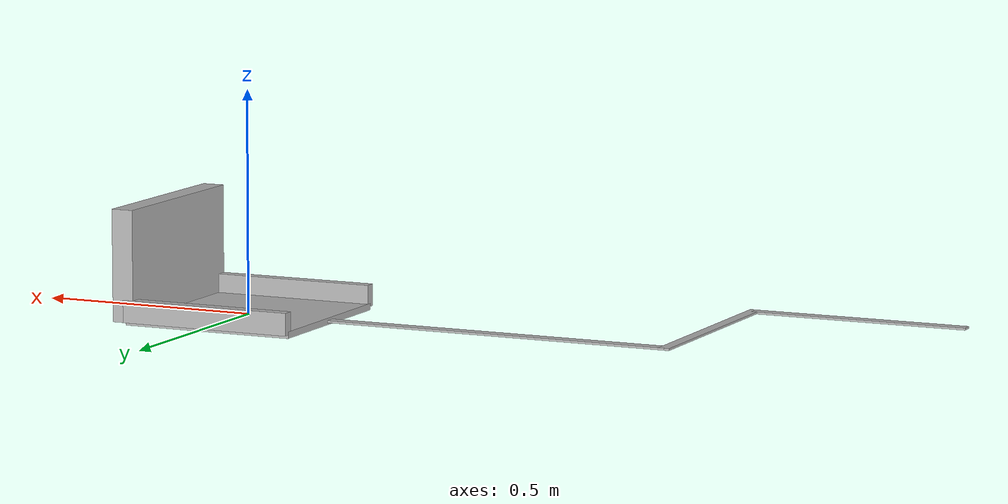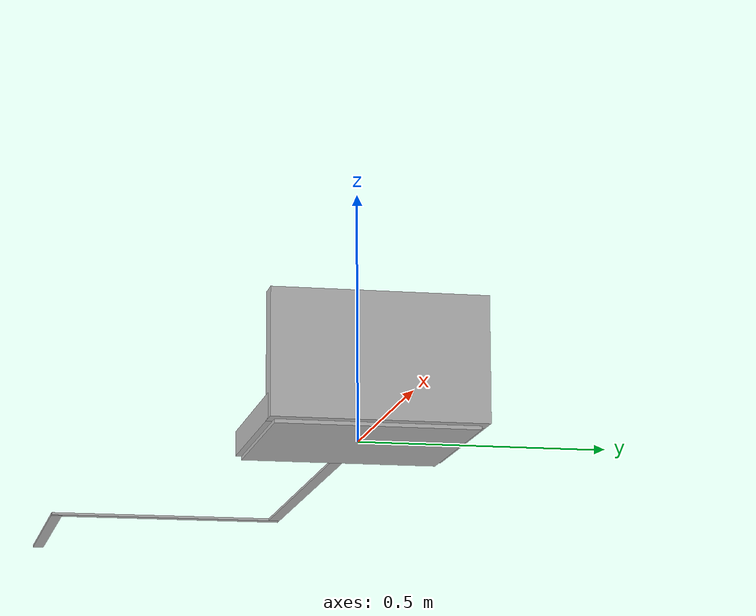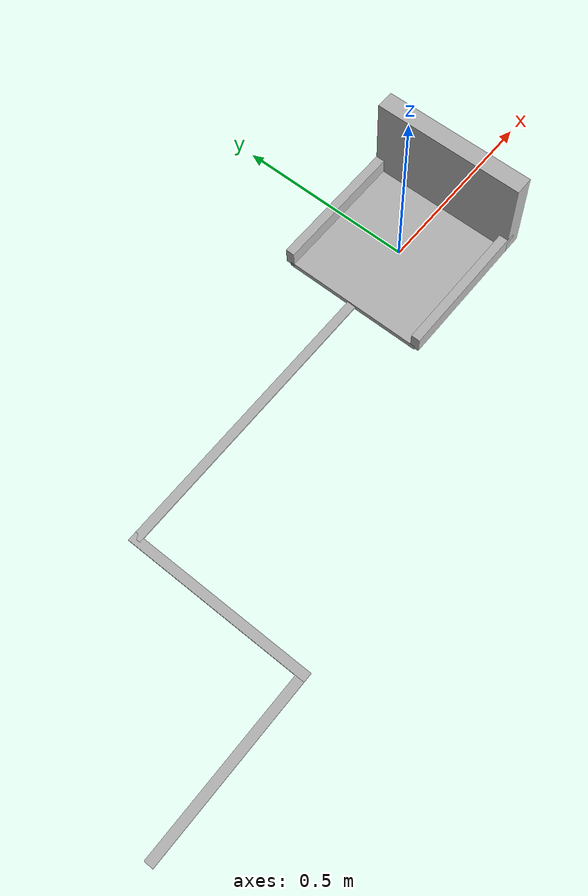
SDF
<?xml version="1.0"?>
<sdf version='1.6'>
<model name="charging_station_2">

  <link name="base">
    <pose>0 0 0 0 0 0 </pose>
    <inertial>
      <mass>1</mass>
        <inertia>
          <ixx>1</ixx>
          <ixy>0</ixy>
          <ixz>0</ixz>
          <iyy>1</iyy>
          <iyz>0</iyz>
          <izz>1</izz>
        </inertia>
    </inertial>

       <visual name='parking_line_1'>
      <pose>-0.5 0 0 0 0 0</pose>
      <geometry>
        <box>
          <size>1 0.025 0.005</size>
        </box>
      </geometry>
	  <material name="green">
	    <color rgba="0 0.7 0 1.0"/>
	  </material>
    </visual>

    <visual name='parking_line_2'>
      <pose>-1 -0.25 0 0 0 1.57</pose>
      <geometry>
        <box>
          <size>0.525 0.025 0.005</size>
        </box>
      </geometry>
	  <material name="green">
	    <color rgba="0 0.7 0 1.0"/>
	  </material>
    </visual>

    <visual name='parking_line_3'>
      <pose>-1.25 -0.5 0 0 0 0</pose>
      <geometry>
        <box>
          <size>0.5 0.025 0.005</size>
        </box>
      </geometry>
	  <material name="green">
	    <color rgba="0 0.7 0 1.0"/>
	  </material>
    </visual>

    <visual name='platform'>
      <pose>0 0 0 0 0 0</pose>
      <geometry>
        <box>
          <size>0.4 0.4 0.015</size>
        </box>
      </geometry>
	  <material name="green">
	    <color rgba="0 0.7 0 1.0"/>
	  </material>
    </visual>

    <visual name='back_board'>
      <pose>0.2 0 0.125 0 0 0</pose>
      <geometry>
        <box>
          <size>0.05 0.425 0.25</size>
        </box>
      </geometry>
	  <material name="green">
	    <color rgba="0 0.7 0 1.0"/>
	  </material>
    </visual>

    <visual name='left_wall'>
      <pose>0 0.2 0.025 0 0 0</pose>
      <geometry>
        <box>
          <size>0.4 0.025 0.05</size>
        </box>
      </geometry>
	  <material name="green">
	    <color rgba="0 0.7 0 1.0"/>
	  </material>
    </visual>

    <visual name='right_wall'>
      <pose>0 -0.2 0.025 0 0 0</pose>
      <geometry>
        <box>
          <size>0.4 0.025 0.05</size>
        </box>
      </geometry>
	  <material name="green">
	    <color rgba="0 0.7 0 1.0"/>
	  </material>
    </visual>
   </link>
</model>
</sdf>
